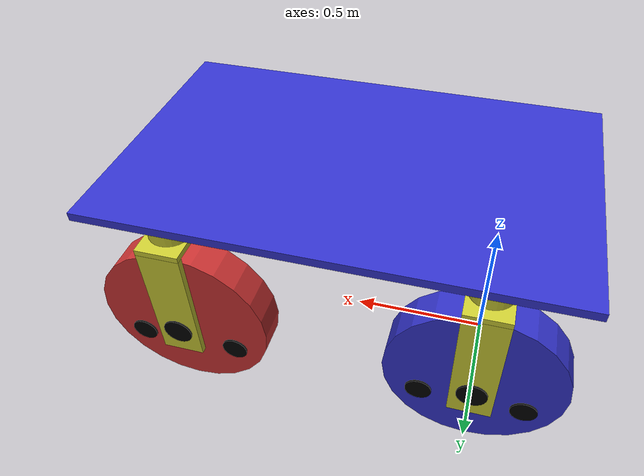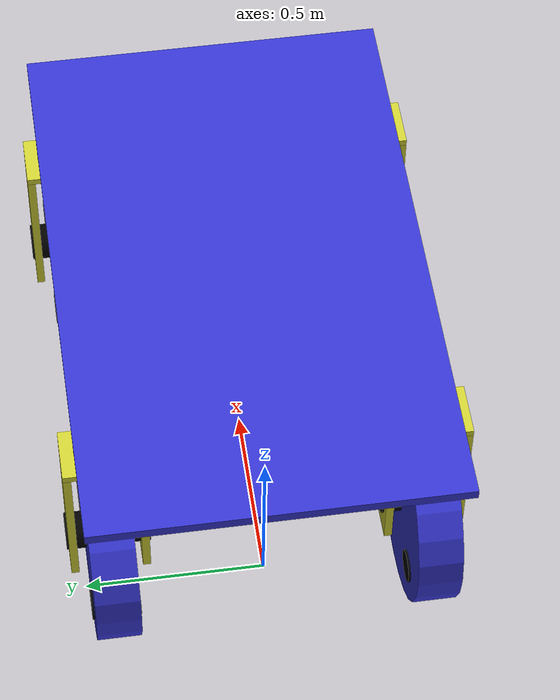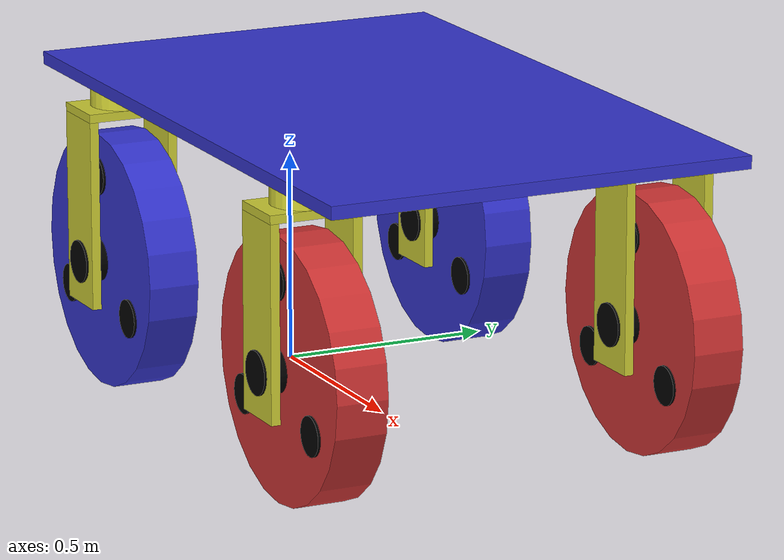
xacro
<robot name="car_like_mobile_robot" xmlns:xacro="http://ros.org/wiki/xacro">

    <xacro:include filename="$(find car_like_mobile_robot_description)/urdf/include/ros2_control.xacro" />
    <xacro:include filename="$(find car_like_mobile_robot_description)/urdf/include/gazebo_plugin.xacro" />

    <!-- define color -->
    <material name="gray">
        <color rgba="0.5 0.5 0.5 0.5"/>
    </material>
    <material name="red">
        <color rgba="0.8 0.2 0.2 1.0"/>
    </material>
    <material name="green">
        <color rgba="0.2 0.8 0.2 1.0"/>
    </material>
    <material name="blue">
        <color rgba="0.2 0.2 0.8 1.0"/>
    </material>
    <material name="yellow">
        <color rgba="0.8 0.8 0.2 1.0"/>
    </material>
    <material name="black">
        <color rgba="0.0 0.0 0.0 1.0"/>
    </material>
    <material name="pink">
        <color rgba="1.0 0.2 0.6 1.0"/>
    </material>
    <material name="orange">
        <color rgba="1.0 0.6 0.0 1.0"/>
    </material>

    <!-- 共通のパラメータ -->
    <xacro:property name="PI" value="3.1415926535897932384626433832795028841971" />
    <xacro:property name="D2R" value="${PI/180}" />
    <xacro:property name="gravitational_acceleration" value="9.81" />

    <!-- 車両型移動ロボットのパラメータ -->
    <xacro:property name="Lv" value="1.0" /> <!-- wheel base -->
    <xacro:property name="vehicle_body_length" value="${Lv * 1.6}" />
    <xacro:property name="vehicle_body_width" value="${Lv}" />
    <xacro:property name="vehicle_body_height" value="0.03" />
    <xacro:property name="center_of_vehicle_body_z" value="${Lv * 0.72}" />
    <xacro:property name="wheel_base_half_length" value="${Lv * 0.5}" />

    <!-- wheel param -->
    <xacro:property name="wheel_radius" value="${Lv * 0.3}" />
    <xacro:property name="wheel_width" value="${wheel_radius * 0.4}" />
    <xacro:property name="wheel_joint_damping" value="0.1" />
    <xacro:property name="wheel_joint_mu" value="0.001" />
    <xacro:property name="wheel_joint_friction" value="${wheel_joint_mu * 0.0}" /> <!-- 横方向に垂直抗力は生まれないため0.0 -->
    <xacro:property name="mu_1" value="0.8" />
    <xacro:property name="mu_2" value="0.8" />
    <xacro:property name="kp" value="${2.0*1e+7}" />
    <xacro:property name="kd" value="10.0" />

    <!-- 車輪の回転がわかるようにするための棒のパラメータと、n番目の棒の車輪中心からの相対位置(x,y) -->
    <xacro:property name="wheel_visual_cylinder_radius" value="${wheel_radius * 0.15}" />
    <xacro:property name="wheel_visual_cylinder_length" value="${wheel_width * 1.1}" />
    <xacro:property name="wheel_1st_visual_cylinder_x" value="${(wheel_radius * 2.0 / 3.0) * cos(PI / 6.0)}" />
    <xacro:property name="wheel_1st_visual_cylinder_y" value="${(wheel_radius * 2.0 / 3.0) * sin(PI / 6.0)}" />
    <xacro:property name="wheel_2nd_visual_cylinder_x" value="${(wheel_radius * 2.0 / 3.0) * cos(5.0 * PI / 6.0)}" />
    <xacro:property name="wheel_2nd_visual_cylinder_y" value="${(wheel_radius * 2.0 / 3.0) * sin(5.0 * PI / 6.0)}" />
    <xacro:property name="wheel_3rd_visual_cylinder_x" value="${(wheel_radius * 2.0 / 3.0) * cos(9.0 * PI / 6.0)}" />
    <xacro:property name="wheel_3rd_visual_cylinder_y" value="${(wheel_radius * 2.0 / 3.0) * sin(9.0 * PI / 6.0)}" />

    <!-- steering param -->
    <xacro:property name="steering_radius" value="${wheel_width * 0.6}" />
    <xacro:property name="steering_height" value="${Lv * 0.04}" />
    <xacro:property name="left_steering_y" value="${0.5*vehicle_body_width - steering_radius}" />
    <xacro:property name="right_steering_y" value="${-0.5*vehicle_body_width + steering_radius}" />

    <!-- steeringの下についている板とその仲間たちのパラメータ -->
    <xacro:property name="plate_under_the_steering_length" value="${steering_radius*2.0}" />
    <xacro:property name="plate_under_the_steering_width" value="${steering_radius*3.0}" />
    <xacro:property name="plate_under_the_steering_height" value="${Lv * 0.02}" />
    <xacro:property name="side_plate_of_wheel_length" value="${plate_under_the_steering_length}" />
    <xacro:property name="side_plate_of_wheel_width" value="${0.15*(plate_under_the_steering_width-steering_radius)}" />
    <xacro:property name="side_plate_of_wheel_height" value="${center_of_vehicle_body_z-(0.5*vehicle_body_height+steering_height+plate_under_the_steering_height) - (wheel_radius-axel_radius*2.0)}" />
    <xacro:property name="axel_length" value="${plate_under_the_steering_width*1.05}" />
    <xacro:property name="axel_radius" value="0.05" />

    <!-- リンクの質量設定 -->
    <xacro:property name="vehicle_body_mass" value="${vehicle_body_length*vehicle_body_width*vehicle_body_height * 7850}" /> <!-- 高さ0.03で約380kg, 高さ0.05で約628kg, 高さ0.07で約880kg-->
    <xacro:property name="steering_mass" value="${PI*steering_radius*steering_radius*steering_height * 7850}" /> <!-- PI*0.072*0.072*0.04 * 7850 = 約5kg -->
    <xacro:property name="plate_under_the_steering_mass" value="${plate_under_the_steering_length*plate_under_the_steering_width*plate_under_the_steering_height * 7850}" /> <!-- 0.144*0.216*0.02 * 7850 = 約5kg -->
    <xacro:property name="side_plate_of_wheel_mass" value="${side_plate_of_wheel_length*side_plate_of_wheel_width*side_plate_of_wheel_height * 7850}" /> <!-- 約3.35kg -->
    <xacro:property name="axel_mass" value="17.75" /> <!-- 半径:0.05[m], 幅:0.288[m], 鋼の密度:7850[kg/m^3] -->
    <xacro:property name="wheel_mass" value="5.19" /> <!-- 外径:0.3[m], 幅:0.12[m], 内径:0.21[m], ゴムの密度:1500[kg/m^3] -->
    <xacro:property name="wheel_visual_cylinder_mass" value="0.07" />

    <!-- friction and damping of steering -->
    <xacro:property name="steering_damping" value="5.0" />
    <xacro:property name="steering_mu" value="0.001" />
    <xacro:property name="steering_friction" value="${steering_mu * gravitational_acceleration * 0.25 * vehicle_body_mass}" />

    <!-- リンクのイナーシャの設定 -->
    <xacro:property name="I_vehicle_body_xx" value="${vehicle_body_mass*(vehicle_body_width*vehicle_body_width + vehicle_body_height*vehicle_body_height) / 12}" />
    <xacro:property name="I_vehicle_body_yy" value="${vehicle_body_mass*(vehicle_body_length*vehicle_body_length + vehicle_body_height*vehicle_body_height) / 12}" />
    <xacro:property name="I_vehicle_body_zz" value="${vehicle_body_mass*(vehicle_body_length*vehicle_body_length + vehicle_body_width*vehicle_body_width) / 12}" />
    <xacro:property name="I_steering_xx" value="${steering_mass*(3*axel_radius*axel_radius + steering_height*steering_height) / 12}" />
    <xacro:property name="I_steering_yy" value="${steering_mass*(3*axel_radius*axel_radius + steering_height*steering_height) / 12}" />
    <xacro:property name="I_steering_zz" value="${steering_mass*axel_radius*axel_radius / 2}" />
    <xacro:property name="I_plate_under_the_steering_xx" value="${plate_under_the_steering_mass*(plate_under_the_steering_height*plate_under_the_steering_height + plate_under_the_steering_length*plate_under_the_steering_length) / 12}" />
    <xacro:property name="I_plate_under_the_steering_yy" value="${plate_under_the_steering_mass*(plate_under_the_steering_width*plate_under_the_steering_width + plate_under_the_steering_height*plate_under_the_steering_height) / 12}" />
    <xacro:property name="I_plate_under_the_steering_zz" value="${plate_under_the_steering_mass*(plate_under_the_steering_width*plate_under_the_steering_width + plate_under_the_steering_length*plate_under_the_steering_length) / 12}" />
    <xacro:property name="I_side_plate_of_wheel_xx" value="${side_plate_of_wheel_mass*(side_plate_of_wheel_height*side_plate_of_wheel_height + side_plate_of_wheel_length*side_plate_of_wheel_length) / 12}" />
    <xacro:property name="I_side_plate_of_wheel_yy" value="${side_plate_of_wheel_mass*(side_plate_of_wheel_width*side_plate_of_wheel_width + side_plate_of_wheel_height*side_plate_of_wheel_height) / 12}" />
    <xacro:property name="I_side_plate_of_wheel_zz" value="${side_plate_of_wheel_mass*(side_plate_of_wheel_width*side_plate_of_wheel_width + side_plate_of_wheel_length*side_plate_of_wheel_length) / 12}" />
    <xacro:property name="I_axel_xx" value="${axel_mass*(3*axel_radius*axel_radius + axel_length*axel_length) / 12}" />
    <xacro:property name="I_axel_yy" value="${axel_mass*(3*axel_radius*axel_radius + axel_length*axel_length) / 12}" />
    <xacro:property name="I_axel_zz" value="${axel_mass*axel_radius*axel_radius / 2}" />
    <xacro:property name="I_wheel_xx" value="${wheel_mass*(3*wheel_radius*wheel_radius + wheel_width*wheel_width) / 12}" />
    <xacro:property name="I_wheel_yy" value="${wheel_mass*(3*wheel_radius*wheel_radius + wheel_width*wheel_width) / 12}" />
    <xacro:property name="I_wheel_zz" value="${wheel_mass*wheel_radius*wheel_radius / 2}" />
    <xacro:property name="I_wheel_visual_cylinder_xx" value="${wheel_visual_cylinder_mass*(3*wheel_visual_cylinder_radius*wheel_visual_cylinder_radius + wheel_visual_cylinder_length*wheel_visual_cylinder_length) / 12}" />
    <xacro:property name="I_wheel_visual_cylinder_yy" value="${wheel_visual_cylinder_mass*(3*wheel_visual_cylinder_radius*wheel_visual_cylinder_radius + wheel_visual_cylinder_length*wheel_visual_cylinder_length) / 12}" />
    <xacro:property name="I_wheel_visual_cylinder_zz" value="${wheel_visual_cylinder_mass*wheel_visual_cylinder_radius*wheel_visual_cylinder_radius / 2}" />

    <!-- 車輪の回転がわかるように埋め込む黒棒のマクロ -->
    <xacro:macro name="wheel_visual_cylinder_macro" params="vehicle front_or_rear left_or_right nth_cylinder">
        <joint name="${vehicle}_${front_or_rear}_${left_or_right}_${nth_cylinder}_joint" type="fixed">
            <xacro:if value="${nth_cylinder=='first'}">
                <origin xyz="${wheel_1st_visual_cylinder_x} ${wheel_1st_visual_cylinder_y} 0" rpy="0 0 0"/>
            </xacro:if>
            <xacro:if value="${nth_cylinder=='second'}">
                <origin xyz="${wheel_2nd_visual_cylinder_x} ${wheel_2nd_visual_cylinder_y} 0" rpy="0 0 0"/>
            </xacro:if>
            <xacro:if value="${nth_cylinder=='third'}">
                <origin xyz="${wheel_3rd_visual_cylinder_x} ${wheel_3rd_visual_cylinder_y} 0" rpy="0 0 0"/>
            </xacro:if>
            <parent link="${vehicle}_${front_or_rear}_${left_or_right}_link"/>
            <child  link="${vehicle}_${front_or_rear}_${left_or_right}_${nth_cylinder}_link"/>
        </joint>
        <link name="${vehicle}_${front_or_rear}_${left_or_right}_${nth_cylinder}_link">
            <inertial>
                <origin xyz="0 0 0" rpy="0 0 0"/>
                <mass value="${wheel_visual_cylinder_mass}"/>
                <inertia ixx="${I_wheel_visual_cylinder_xx}" ixy="0.0" ixz="0.0" iyy="${I_wheel_visual_cylinder_yy}" iyz="0.0" izz="${I_wheel_visual_cylinder_zz}"/>
            </inertial>
            <visual>
                <geometry>
                <cylinder radius="${wheel_visual_cylinder_radius}" length="${wheel_visual_cylinder_length}" />
                </geometry>
                <material name="black"/>
            </visual>
            <collision>
                <geometry>
                <cylinder radius="${wheel_visual_cylinder_radius}" length="${wheel_visual_cylinder_length}" />
                </geometry>
            </collision>
        </link>
        <gazebo reference="${vehicle}_${front_or_rear}_${left_or_right}_${nth_cylinder}_link">
            <material>Gazebo/Black</material>
        </gazebo>
    </xacro:macro>

    <!-- wheel macro -->
    <xacro:macro name="wheel_macro" params="parent vehicle front_or_rear left_or_right color gazebo_color">
        <joint name="${vehicle}_${front_or_rear}_${left_or_right}_joint" type="continuous">
            <origin xyz="0 0 ${-(center_of_vehicle_body_z - 0.5*(vehicle_body_height +steering_height) - wheel_radius)}" rpy="${radians(-90)} 0 0"/>
            <parent link="${parent}"/>
            <child  link="${vehicle}_${front_or_rear}_${left_or_right}_link"/>
            <dynamics damping="${wheel_joint_damping}" friction="${wheel_joint_friction}"/>
            <axis xyz="0 0 1" />
            <limit velocity="${1.0/wheel_radius}" effort="70.0" /> <!-- 水平方向に1.0 m/sが上限-->
        </joint>
        <link name="${vehicle}_${front_or_rear}_${left_or_right}_link">
            <inertial>
                <origin xyz="0 0 0" rpy="0 0 0"/>
                <mass value="${wheel_mass}"/>
                <inertia ixx="${I_wheel_xx}" ixy="0.0" ixz="0.0" iyy="${I_wheel_yy}" iyz="0.0" izz="${I_wheel_zz}"/>
            </inertial>
            <visual>
                <geometry>
                    <cylinder radius="${wheel_radius}" length="${wheel_width}" />
                </geometry>
                <material name="${color}"/>
            </visual>
            <collision>
                <geometry>
                    <cylinder radius="${wheel_radius}" length="${wheel_width}" />
                </geometry>
            </collision>
        </link>
        <!-- 回転がわかるように3つの黒棒を埋め込む -->
        <xacro:wheel_visual_cylinder_macro vehicle="${vehicle}" front_or_rear="${front_or_rear}" left_or_right="${left_or_right}" nth_cylinder="first"/>
        <xacro:wheel_visual_cylinder_macro vehicle="${vehicle}" front_or_rear="${front_or_rear}" left_or_right="${left_or_right}" nth_cylinder="second"/>
        <xacro:wheel_visual_cylinder_macro vehicle="${vehicle}" front_or_rear="${front_or_rear}" left_or_right="${left_or_right}" nth_cylinder="third"/>

        <gazebo reference="${vehicle}_${front_or_rear}_${left_or_right}_link">
            <material>Gazebo/${gazebo_color}</material>
            <mu1 value="${mu_1}" />
            <mu2 value="${mu_2}" />
            <kp value="${kp}" />
            <kd value="${kd}" />
        </gazebo>
    </xacro:macro>

    <!-- side_plate_of_wheel_macro -->
    <xacro:macro name="side_plate_of_wheel_macro" params="parent vehicle front_or_rear left_or_right left_plate_or_right_plate">
        <joint name="${vehicle}_${left_plate_or_right_plate}_plate_of_${front_or_rear}_${left_or_right}_wheel_joint" type="fixed">
            <xacro:if value="${left_plate_or_right_plate=='left'}">
                <origin xyz="0 ${0.5*(plate_under_the_steering_width - side_plate_of_wheel_width)} ${-0.5 *(plate_under_the_steering_height + side_plate_of_wheel_height)}" rpy="0 0 0"/>
            </xacro:if>
            <xacro:if value="${left_plate_or_right_plate=='right'}">
                <origin xyz="0 ${-0.5*(plate_under_the_steering_width - side_plate_of_wheel_width)} ${-0.5 *(plate_under_the_steering_height + side_plate_of_wheel_height)}" rpy="0 0 0"/>
            </xacro:if>
            <parent link="${parent}"/>
            <child  link="${vehicle}_${left_plate_or_right_plate}_plate_of_${front_or_rear}_${left_or_right}_wheel_link"/>
        </joint>
        <link name="${vehicle}_${left_plate_or_right_plate}_plate_of_${front_or_rear}_${left_or_right}_wheel_link">
            <inertial>
                <origin xyz="0 0 0" rpy="0 0 0"/>
                <mass value="${side_plate_of_wheel_mass}"/>
                <inertia ixx="${I_side_plate_of_wheel_xx}" ixy="0.0" ixz="0.0" iyy="${I_side_plate_of_wheel_yy}" iyz="0.0" izz="${I_side_plate_of_wheel_zz}"/>
            </inertial>
            <visual>
            <origin xyz="0 0 0" rpy="0 0 0" />
                <geometry>
                    <box size="${side_plate_of_wheel_length} ${side_plate_of_wheel_width} ${side_plate_of_wheel_height}" />
                </geometry>
                <material name="yellow" />
            </visual>
            <collision>
            <origin xyz="0 0 0" rpy="0 0 0" />
                <geometry>
                    <box size="${side_plate_of_wheel_length} ${side_plate_of_wheel_width} ${side_plate_of_wheel_height}" />
                </geometry>
            </collision>
        </link>
        <gazebo reference="${vehicle}_${left_plate_or_right_plate}_plate_of_${front_or_rear}_${left_or_right}_wheel_link">
            <material>Gazebo/Yellow</material>
        </gazebo>
    </xacro:macro>

    <!-- ${front_or_rear}_${left_or_right}_steering_and_wheel_macro -->
    <xacro:macro name="steering_and_wheel_macro" params="parent vehicle xyz front_or_rear left_or_right">
        <!-- steering -->
        <xacro:if value="${front_or_rear=='front'}">
            <xacro:property name="wheel_joint_type" value="revolute" />
        </xacro:if>
        <xacro:if value="${front_or_rear=='rear'}">
            <xacro:property name="wheel_joint_type" value="fixed" />
        </xacro:if>
        <joint name="${vehicle}_${front_or_rear}_${left_or_right}_steering_joint" type="${wheel_joint_type}">
            <origin xyz="${xyz}" rpy="0 0 0"/>
            <parent link="${parent}"/>
            <child  link="${vehicle}_${front_or_rear}_${left_or_right}_steering_link"/>
            <xacro:if value="${front_or_rear=='front'}">
                <dynamics damping="${steering_damping}" friction="${steering_friction}"/>
                <axis xyz="0 0 1" />
                <limit lower="-1.57" upper="1.57" effort="1000.0" velocity="10.0"/>
            </xacro:if>
        </joint>
        <link name="${vehicle}_${front_or_rear}_${left_or_right}_steering_link">
            <inertial>
                <origin xyz="0 0 0" rpy="0 0 0"/>
                <mass value="${steering_mass}"/>
                <inertia ixx="${I_steering_xx}" ixy="0.0" ixz="0.0" iyy="${I_steering_yy}" iyz="0.0" izz="${I_steering_zz}"/>
            </inertial>
            <visual>
            <origin xyz="0 0 0" rpy="0 0 0" />
                <geometry>
                    <cylinder radius="${steering_radius}" length="${steering_height}" />
                </geometry>
                <material name="yellow" />
            </visual>
            <collision>
            <origin xyz="0 0 0" rpy="0 0 0" />
                <geometry>
                    <cylinder radius="${steering_radius}" length="${steering_height}" />
                </geometry>
            </collision>
        </link>
        <gazebo reference="${vehicle}_${front_or_rear}_${left_or_right}_steering_link">
            <material>Gazebo/Yellow</material>
        </gazebo>

        <!-- wheel -->
        <xacro:if value="${front_or_rear=='front'}">
            <xacro:wheel_macro vehicle="${vehicle}" front_or_rear="${front_or_rear}" left_or_right ="${left_or_right}" parent="${vehicle}_${front_or_rear}_${left_or_right}_steering_link" color="red" gazebo_color="Red"/>
        </xacro:if>
        <xacro:if value="${front_or_rear=='rear'}">
            <xacro:wheel_macro vehicle="${vehicle}" front_or_rear="${front_or_rear}" left_or_right ="${left_or_right}" parent="${vehicle}_${front_or_rear}_${left_or_right}_steering_link" color="blue" gazebo_color="Blue"/>
        </xacro:if>

        <!-- plate under the steering -->
        <joint name="${vehicle}_plate_under_the_${front_or_rear}_${left_or_right}_steering_joint" type="fixed">
            <origin xyz="0 0 ${-0.5 *(steering_height + plate_under_the_steering_height)}" rpy="0 0 0"/>
            <parent link="${vehicle}_${front_or_rear}_${left_or_right}_steering_link"/>
            <child  link="${vehicle}_plate_under_the_${front_or_rear}_${left_or_right}_steering_link"/>
        </joint>
        <link name="${vehicle}_plate_under_the_${front_or_rear}_${left_or_right}_steering_link">
            <inertial>
                <origin xyz="0 0 0" rpy="0 0 0"/>
                <mass value="${plate_under_the_steering_mass}"/>
                <inertia ixx="${I_plate_under_the_steering_xx}" ixy="0.0" ixz="0.0" iyy="${I_plate_under_the_steering_yy}" iyz="0.0" izz="${I_plate_under_the_steering_zz}"/>
            </inertial>
            <visual>
            <origin xyz="0 0 0" rpy="0 0 0" />
                <geometry>
                    <box size="${plate_under_the_steering_length} ${plate_under_the_steering_width} ${plate_under_the_steering_height}" />
                </geometry>
                <material name="yellow" />
            </visual>
            <collision>
            <origin xyz="0 0 0" rpy="0 0 0" />
                <geometry>
                    <box size="${plate_under_the_steering_length} ${plate_under_the_steering_width} ${plate_under_the_steering_height}" />
                </geometry>
            </collision>
        </link>
        <gazebo reference="${vehicle}_plate_under_the_${front_or_rear}_${left_or_right}_steering_link">
            <material>Gazebo/Yellow</material>
        </gazebo>

        <!-- side plate of wheel -->
        <xacro:side_plate_of_wheel_macro parent="${vehicle}_plate_under_the_${front_or_rear}_${left_or_right}_steering_link" vehicle = "${vehicle}" front_or_rear="${front_or_rear}" left_or_right="${left_or_right}" left_plate_or_right_plate="left"/>
        <xacro:side_plate_of_wheel_macro parent="${vehicle}_plate_under_the_${front_or_rear}_${left_or_right}_steering_link" vehicle = "${vehicle}" front_or_rear="${front_or_rear}" left_or_right="${left_or_right}" left_plate_or_right_plate="right"/>

        <!-- axel of wheel -->
        <joint name="${vehicle}_${front_or_rear}_${left_or_right}_wheel_axle_joint" type="fixed">
            <origin xyz="0 0 ${-((center_of_vehicle_body_z - 0.5*vehicle_body_height -steering_height -0.5*plate_under_the_steering_height) - wheel_radius)}" rpy="${radians(-90)} 0 0"/>
            <parent link="${vehicle}_plate_under_the_${front_or_rear}_${left_or_right}_steering_link"/>
            <child  link="${vehicle}_${front_or_rear}_${left_or_right}_wheel_axle_link"/>
        </joint>
        <link name="${vehicle}_${front_or_rear}_${left_or_right}_wheel_axle_link">
            <inertial>
                <origin xyz="0 0 0" rpy="0 0 0"/>
                <mass value="${axel_mass}"/>
                <inertia ixx="${I_axel_xx}" ixy="0.0" ixz="0.0" iyy="${I_axel_yy}" iyz="0.0" izz="${I_axel_zz}"/>
            </inertial>
            <visual>
            <origin xyz="0 0 0" rpy="0 0 0" />
                <geometry>
                    <cylinder radius="${axel_radius}" length="${axel_length}" />
                </geometry>
                <material name="black" />
            </visual>
            <collision>
            <origin xyz="0 0 0" rpy="0 0 0" />
                <geometry>
                    <cylinder radius="${axel_radius}" length="${axel_length}" />
                </geometry>
            </collision>
        </link>
        <gazebo reference="${vehicle}_${front_or_rear}_${left_or_right}_wheel_axle_link">
            <material>Gazebo/Black</material>
        </gazebo>
    </xacro:macro>

    <!-- car like mobile robot macro -->
    <xacro:macro name="car_like_mobile_robot_macro" params="parent vehicle">
        <!-- vehicle body -->
        <joint name="${vehicle}_body_joint" type="fixed">
            <origin xyz="${wheel_base_half_length} 0 ${center_of_vehicle_body_z}" rpy="0 0 0"/>
            <parent link="${parent}"/>
            <child  link="${vehicle}_body_link"/>
        </joint>
        <link name="${vehicle}_body_link">
            <inertial>
                <origin xyz="0 0 0" rpy="0 0 0"/>
                <mass value="${vehicle_body_mass}"/>
                <inertia ixx="${I_vehicle_body_xx}" ixy="0.0" ixz="0.0" iyy="${I_vehicle_body_yy}" iyz="0.0" izz="${I_vehicle_body_zz}"/>
            </inertial>
            <visual>
                <origin xyz="0 0 0" rpy="0 0 0" />
                <geometry>
                    <box size="${vehicle_body_length} ${vehicle_body_width} ${vehicle_body_height}" />
                </geometry>
                <material name="blue" />
            </visual>
            <collision>
                <origin xyz="0 0 0" rpy="0 0 0" />
                <geometry>
                    <box size="${vehicle_body_length} ${vehicle_body_width} ${vehicle_body_height}" />
                </geometry>
            </collision>
        </link>
        <gazebo reference="${vehicle}_body_link">
            <material>Gazebo/Blue</material>
        </gazebo>

        <!-- steering and wheel -->
        <xacro:steering_and_wheel_macro parent="${vehicle}_body_link" vehicle = "${vehicle}" xyz="${wheel_base_half_length} ${left_steering_y} ${-0.5 *(vehicle_body_height + steering_height)}" front_or_rear="front" left_or_right="left"/>
        <xacro:steering_and_wheel_macro parent="${vehicle}_body_link" vehicle = "${vehicle}" xyz="${wheel_base_half_length} ${right_steering_y} ${-0.5 *(vehicle_body_height + steering_height)}" front_or_rear="front" left_or_right="right"/>
        <xacro:steering_and_wheel_macro parent="${vehicle}_body_link" vehicle = "${vehicle}" xyz="${-wheel_base_half_length} ${left_steering_y} ${-0.5 *(vehicle_body_height + steering_height)}" front_or_rear="rear" left_or_right="left"/>
        <xacro:steering_and_wheel_macro parent="${vehicle}_body_link" vehicle = "${vehicle}" xyz="${-wheel_base_half_length} ${right_steering_y} ${-0.5 *(vehicle_body_height + steering_height)}" front_or_rear="rear" left_or_right="right"/>
    </xacro:macro>

    <!-- 本体 -->
    <link name="base_link"/>

    <!-- Car-like Mobile Robot -->
    <xacro:car_like_mobile_robot_macro vehicle="vehicle" parent="base_link"/>

</robot>
